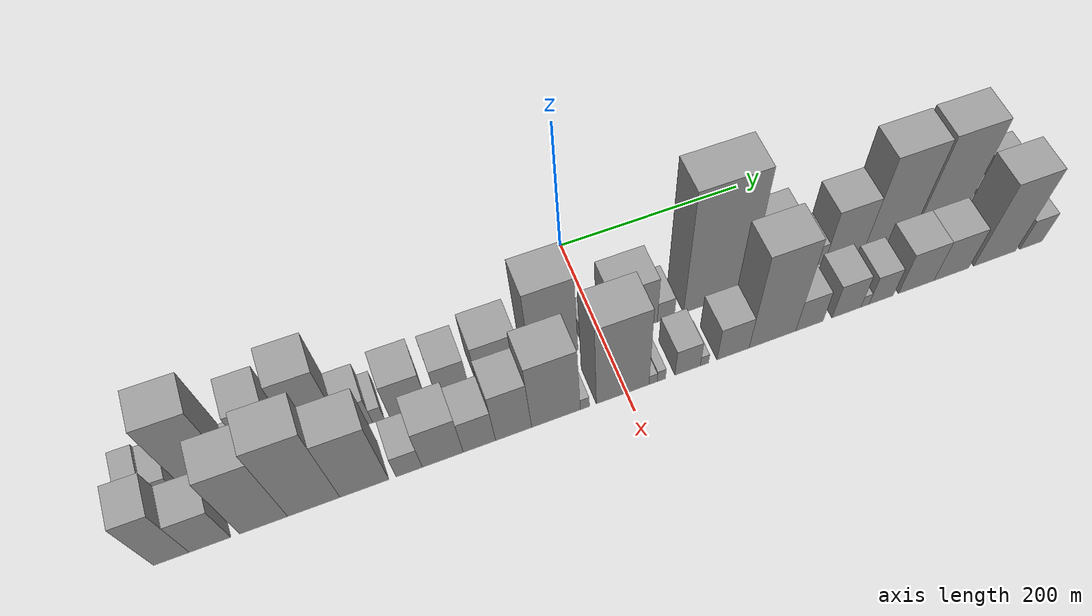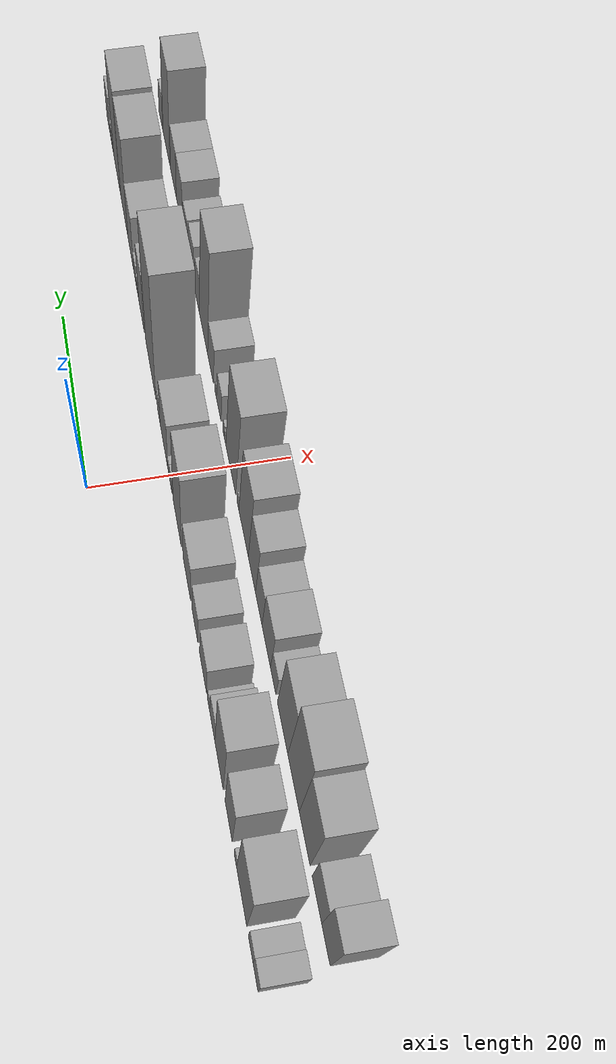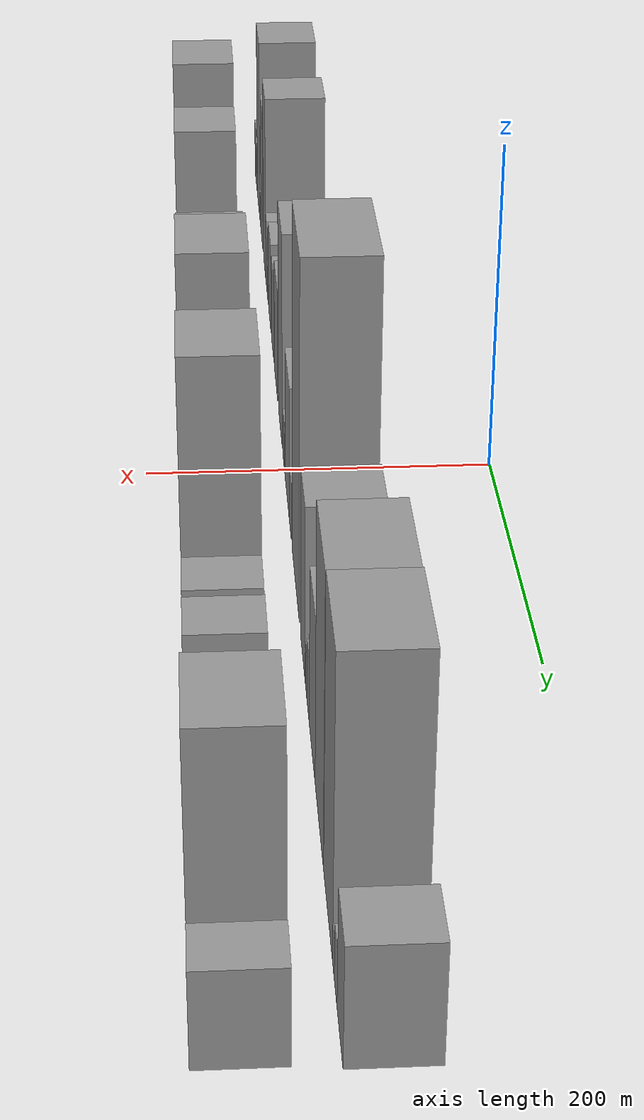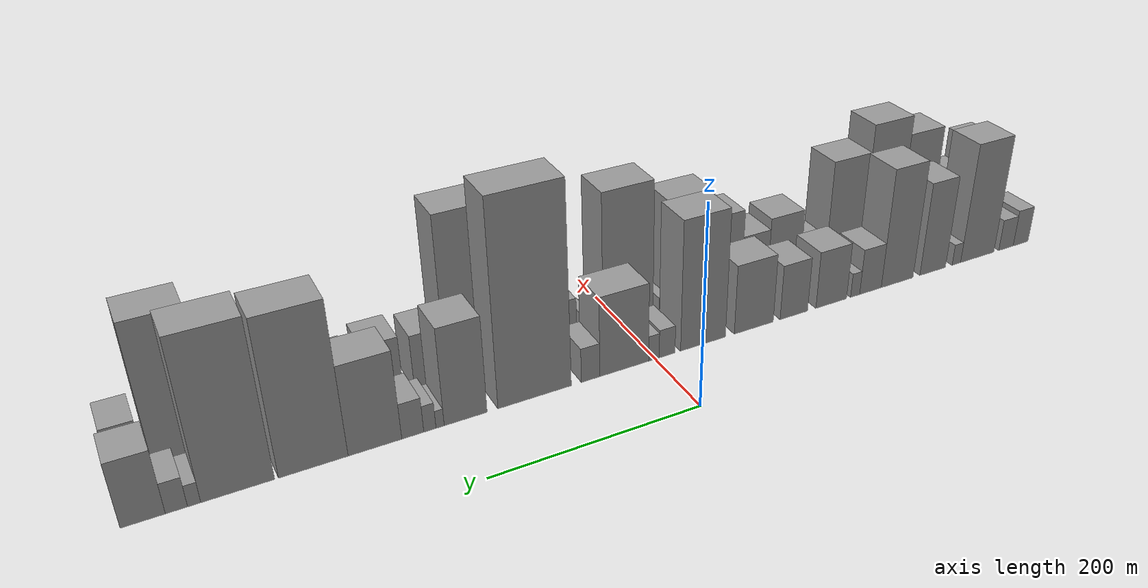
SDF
<sdf version="1.6">
 <world name="default">
  <scene>
   <sky><clouds><speed>12</speed></clouds></sky>
   <ambient>0.4 0.4 0.4 1</ambient>
   <background>0.7 0.7 0.7 1</background>
   <shadows>1</shadows>
  </scene>
  <gravity>0 0 -9.8066</gravity>
  <magnetic_field>6e-06 2.3e-05 -4.2e-05</magnetic_field>
  <physics default="0" name="default_physics" type="ode">
   <ode>
    <solver>
     <type>quick</type>
     <iters>10</iters>
     <sor>1.0</sor>
     <use_dynamic_moi_rescaling>0</use_dynamic_moi_rescaling>
    </solver>
    <constraints>
     <cfm>0</cfm>
     <erp>0.2</erp>
     <contact_max_correcting_vel>100</contact_max_correcting_vel>
     <contact_surface_layer>0.001</contact_surface_layer>
    </constraints>
   </ode>
   <max_step_size>0.004</max_step_size>
   <real_time_factor>1</real_time_factor>
   <real_time_update_rate>250</real_time_update_rate>
  </physics>
  <light name="sun" type="directional">
   <pose>0 0 10 0 0 0</pose>
   <diffuse>0.8 0.8 0.8 1</diffuse>
   <specular>0.2 0.2 0.2 1</specular>
   <attenuation>
    <range>1000</range>
    <constant>0.9</constant>
    <linear>0.01</linear>
    <quadratic>0.001</quadratic>
   </attenuation>
   <direction>-0.5 0.1 -0.9</direction>
  </light>
  <model name="building_1">
   <static>1</static>
   <pose>100.0000 -449.3902 0 0.000000 0.000000 0.000000</pose>
   <link name="link">
    <pose>0 0 21.00 0 0 0</pose>
    <collision name="collision"><geometry><box><size>40.0000 21.2195 42.0000</size></box></geometry></collision>
    <visual name="visual">
     <cast_shadows>0</cast_shadows>
     <geometry><box><size>40.0000 21.2195 42.0000</size></box></geometry>
     <material>
      <script>
       <uri>model://grey_wall/materials/scripts</uri>
       <uri>model://grey_wall/materials/textures</uri>
       <name>vrc/grey_wall</name>
      </script>
     </material>
    </visual>
   </link>
  </model>
  <model name="building_2">
   <static>1</static>
   <pose>100.0000 -428.5932 0 0.000000 0.000000 0.000000</pose>
   <link name="link">
    <pose>0 0 18.00 0 0 0</pose>
    <collision name="collision"><geometry><box><size>40.0000 20.3746 36.0000</size></box></geometry></collision>
    <visual name="visual">
     <cast_shadows>0</cast_shadows>
     <geometry><box><size>40.0000 20.3746 36.0000</size></box></geometry>
     <material>
      <script>
       <uri>model://grey_wall/materials/scripts</uri>
       <uri>model://grey_wall/materials/textures</uri>
       <name>vrc/grey_wall</name>
      </script>
     </material>
    </visual>
   </link>
  </model>
  <model name="building_3">
   <static>1</static>
   <pose>100.0000 -388.4780 0 0.000000 0.000000 0.000000</pose>
   <link name="link">
    <pose>0 0 67.50 0 0 0</pose>
    <collision name="collision"><geometry><box><size>40.0000 45.8558 135.0000</size></box></geometry></collision>
    <visual name="visual">
     <cast_shadows>0</cast_shadows>
     <geometry><box><size>40.0000 45.8558 135.0000</size></box></geometry>
     <material>
      <script>
       <uri>model://grey_wall/materials/scripts</uri>
       <uri>model://grey_wall/materials/textures</uri>
       <name>vrc/grey_wall</name>
      </script>
     </material>
    </visual>
   </link>
  </model>
  <model name="building_4">
   <static>1</static>
   <pose>100.0000 -359.8296 0 0.000000 0.000000 0.000000</pose>
   <link name="link">
    <pose>0 0 12.00 0 0 0</pose>
    <collision name="collision"><geometry><box><size>40.0000 11.4409 24.0000</size></box></geometry></collision>
    <visual name="visual">
     <cast_shadows>0</cast_shadows>
     <geometry><box><size>40.0000 11.4409 24.0000</size></box></geometry>
     <material>
      <script>
       <uri>model://grey_wall/materials/scripts</uri>
       <uri>model://grey_wall/materials/textures</uri>
       <name>vrc/grey_wall</name>
      </script>
     </material>
    </visual>
   </link>
  </model>
  <model name="building_5">
   <static>1</static>
   <pose>100.0000 -328.1157 0 0.000000 0.000000 0.000000</pose>
   <link name="link">
    <pose>0 0 52.50 0 0 0</pose>
    <collision name="collision"><geometry><box><size>40.0000 33.9868 105.0000</size></box></geometry></collision>
    <visual name="visual">
     <cast_shadows>0</cast_shadows>
     <geometry><box><size>40.0000 33.9868 105.0000</size></box></geometry>
     <material>
      <script>
       <uri>model://grey_wall/materials/scripts</uri>
       <uri>model://grey_wall/materials/textures</uri>
       <name>vrc/grey_wall</name>
      </script>
     </material>
    </visual>
   </link>
  </model>
  <model name="building_6">
   <static>1</static>
   <pose>100.0000 -281.7072 0 0.000000 0.000000 0.000000</pose>
   <link name="link">
    <pose>0 0 66.00 0 0 0</pose>
    <collision name="collision"><geometry><box><size>40.0000 40.8302 132.0000</size></box></geometry></collision>
    <visual name="visual">
     <cast_shadows>0</cast_shadows>
     <geometry><box><size>40.0000 40.8302 132.0000</size></box></geometry>
     <material>
      <script>
       <uri>model://grey_wall/materials/scripts</uri>
       <uri>model://grey_wall/materials/textures</uri>
       <name>vrc/grey_wall</name>
      </script>
     </material>
    </visual>
   </link>
  </model>
  <model name="building_7">
   <static>1</static>
   <pose>100.0000 -247.7071 0 0.000000 0.000000 0.000000</pose>
   <link name="link">
    <pose>0 0 25.50 0 0 0</pose>
    <collision name="collision"><geometry><box><size>40.0000 27.1700 51.0000</size></box></geometry></collision>
    <visual name="visual">
     <cast_shadows>0</cast_shadows>
     <geometry><box><size>40.0000 27.1700 51.0000</size></box></geometry>
     <material>
      <script>
       <uri>model://grey_wall/materials/scripts</uri>
       <uri>model://grey_wall/materials/textures</uri>
       <name>vrc/grey_wall</name>
      </script>
     </material>
    </visual>
   </link>
  </model>
  <model name="building_8">
   <static>1</static>
   <pose>100.0000 -228.4823 0 0.000000 0.000000 0.000000</pose>
   <link name="link">
    <pose>0 0 13.50 0 0 0</pose>
    <collision name="collision"><geometry><box><size>40.0000 11.2797 27.0000</size></box></geometry></collision>
    <visual name="visual">
     <cast_shadows>0</cast_shadows>
     <geometry><box><size>40.0000 11.2797 27.0000</size></box></geometry>
     <material>
      <script>
       <uri>model://grey_wall/materials/scripts</uri>
       <uri>model://grey_wall/materials/textures</uri>
       <name>vrc/grey_wall</name>
      </script>
     </material>
    </visual>
   </link>
  </model>
  <model name="building_9">
   <static>1</static>
   <pose>100.0000 -199.2075 0 0.000000 0.000000 0.000000</pose>
   <link name="link">
    <pose>0 0 31.50 0 0 0</pose>
    <collision name="collision"><geometry><box><size>40.0000 37.2698 63.0000</size></box></geometry></collision>
    <visual name="visual">
     <cast_shadows>0</cast_shadows>
     <geometry><box><size>40.0000 37.2698 63.0000</size></box></geometry>
     <material>
      <script>
       <uri>model://grey_wall/materials/scripts</uri>
       <uri>model://grey_wall/materials/textures</uri>
       <name>vrc/grey_wall</name>
      </script>
     </material>
    </visual>
   </link>
  </model>
  <model name="building_10">
   <static>1</static>
   <pose>100.0000 -154.3874 0 0.000000 0.000000 0.000000</pose>
   <link name="link">
    <pose>0 0 30.00 0 0 0</pose>
    <collision name="collision"><geometry><box><size>40.0000 32.3704 60.0000</size></box></geometry></collision>
    <visual name="visual">
     <cast_shadows>0</cast_shadows>
     <geometry><box><size>40.0000 32.3704 60.0000</size></box></geometry>
     <material>
      <script>
       <uri>model://grey_wall/materials/scripts</uri>
       <uri>model://grey_wall/materials/textures</uri>
       <name>vrc/grey_wall</name>
      </script>
     </material>
    </visual>
   </link>
  </model>
  <model name="building_11">
   <static>1</static>
   <pose>100.0000 -108.0179 0 0.000000 0.000000 0.000000</pose>
   <link name="link">
    <pose>0 0 37.50 0 0 0</pose>
    <collision name="collision"><geometry><box><size>40.0000 44.3687 75.0000</size></box></geometry></collision>
    <visual name="visual">
     <cast_shadows>0</cast_shadows>
     <geometry><box><size>40.0000 44.3687 75.0000</size></box></geometry>
     <material>
      <script>
       <uri>model://grey_wall/materials/scripts</uri>
       <uri>model://grey_wall/materials/textures</uri>
       <name>vrc/grey_wall</name>
      </script>
     </material>
    </visual>
   </link>
  </model>
  <model name="building_12">
   <static>1</static>
   <pose>100.0000 -51.2898 0 0.000000 0.000000 0.000000</pose>
   <link name="link">
    <pose>0 0 69.00 0 0 0</pose>
    <collision name="collision"><geometry><box><size>40.0000 49.0875 138.0000</size></box></geometry></collision>
    <visual name="visual">
     <cast_shadows>0</cast_shadows>
     <geometry><box><size>40.0000 49.0875 138.0000</size></box></geometry>
     <material>
      <script>
       <uri>model://grey_wall/materials/scripts</uri>
       <uri>model://grey_wall/materials/textures</uri>
       <name>vrc/grey_wall</name>
      </script>
     </material>
    </visual>
   </link>
  </model>
  <model name="building_13">
   <static>1</static>
   <pose>100.0000 -12.3509 0 0.000000 0.000000 0.000000</pose>
   <link name="link">
    <pose>0 0 15.00 0 0 0</pose>
    <collision name="collision"><geometry><box><size>40.0000 16.7902 30.0000</size></box></geometry></collision>
    <visual name="visual">
     <cast_shadows>0</cast_shadows>
     <geometry><box><size>40.0000 16.7902 30.0000</size></box></geometry>
     <material>
      <script>
       <uri>model://grey_wall/materials/scripts</uri>
       <uri>model://grey_wall/materials/textures</uri>
       <name>vrc/grey_wall</name>
      </script>
     </material>
    </visual>
   </link>
  </model>
  <model name="building_14">
   <static>1</static>
   <pose>100.0000 1.6245 0 0.000000 0.000000 0.000000</pose>
   <link name="link">
    <pose>0 0 13.50 0 0 0</pose>
    <collision name="collision"><geometry><box><size>40.0000 11.1606 27.0000</size></box></geometry></collision>
    <visual name="visual">
     <cast_shadows>0</cast_shadows>
     <geometry><box><size>40.0000 11.1606 27.0000</size></box></geometry>
     <material>
      <script>
       <uri>model://grey_wall/materials/scripts</uri>
       <uri>model://grey_wall/materials/textures</uri>
       <name>vrc/grey_wall</name>
      </script>
     </material>
    </visual>
   </link>
  </model>
  <model name="building_15">
   <static>1</static>
   <pose>100.0000 32.2557 0 0.000000 0.000000 0.000000</pose>
   <link name="link">
    <pose>0 0 42.00 0 0 0</pose>
    <collision name="collision"><geometry><box><size>40.0000 50.1018 84.0000</size></box></geometry></collision>
    <visual name="visual">
     <cast_shadows>0</cast_shadows>
     <geometry><box><size>40.0000 50.1018 84.0000</size></box></geometry>
     <material>
      <script>
       <uri>model://grey_wall/materials/scripts</uri>
       <uri>model://grey_wall/materials/textures</uri>
       <name>vrc/grey_wall</name>
      </script>
     </material>
    </visual>
   </link>
  </model>
  <model name="building_16">
   <static>1</static>
   <pose>100.0000 66.6126 0 0.000000 0.000000 0.000000</pose>
   <link name="link">
    <pose>0 0 18.00 0 0 0</pose>
    <collision name="collision"><geometry><box><size>40.0000 18.6121 36.0000</size></box></geometry></collision>
    <visual name="visual">
     <cast_shadows>0</cast_shadows>
     <geometry><box><size>40.0000 18.6121 36.0000</size></box></geometry>
     <material>
      <script>
       <uri>model://grey_wall/materials/scripts</uri>
       <uri>model://grey_wall/materials/textures</uri>
       <name>vrc/grey_wall</name>
      </script>
     </material>
    </visual>
   </link>
  </model>
  <model name="building_17">
   <static>1</static>
   <pose>100.0000 121.2676 0 0.000000 0.000000 0.000000</pose>
   <link name="link">
    <pose>0 0 103.50 0 0 0</pose>
    <collision name="collision"><geometry><box><size>40.0000 70.6977 207.0000</size></box></geometry></collision>
    <visual name="visual">
     <cast_shadows>0</cast_shadows>
     <geometry><box><size>40.0000 70.6977 207.0000</size></box></geometry>
     <material>
      <script>
       <uri>model://grey_wall/materials/scripts</uri>
       <uri>model://grey_wall/materials/textures</uri>
       <name>vrc/grey_wall</name>
      </script>
     </material>
    </visual>
   </link>
  </model>
  <model name="building_18">
   <static>1</static>
   <pose>100.0000 186.2525 0 0.000000 0.000000 0.000000</pose>
   <link name="link">
    <pose>0 0 49.50 0 0 0</pose>
    <collision name="collision"><geometry><box><size>40.0000 39.2721 99.0000</size></box></geometry></collision>
    <visual name="visual">
     <cast_shadows>0</cast_shadows>
     <geometry><box><size>40.0000 39.2721 99.0000</size></box></geometry>
     <material>
      <script>
       <uri>model://grey_wall/materials/scripts</uri>
       <uri>model://grey_wall/materials/textures</uri>
       <name>vrc/grey_wall</name>
      </script>
     </material>
    </visual>
   </link>
  </model>
  <model name="building_19">
   <static>1</static>
   <pose>100.0000 209.5763 0 0.000000 0.000000 0.000000</pose>
   <link name="link">
    <pose>0 0 9.00 0 0 0</pose>
    <collision name="collision"><geometry><box><size>40.0000 7.3756 18.0000</size></box></geometry></collision>
    <visual name="visual">
     <cast_shadows>0</cast_shadows>
     <geometry><box><size>40.0000 7.3756 18.0000</size></box></geometry>
     <material>
      <script>
       <uri>model://grey_wall/materials/scripts</uri>
       <uri>model://grey_wall/materials/textures</uri>
       <name>vrc/grey_wall</name>
      </script>
     </material>
    </visual>
   </link>
  </model>
  <model name="building_20">
   <static>1</static>
   <pose>100.0000 218.6979 0 0.000000 0.000000 0.000000</pose>
   <link name="link">
    <pose>0 0 13.50 0 0 0</pose>
    <collision name="collision"><geometry><box><size>40.0000 10.8678 27.0000</size></box></geometry></collision>
    <visual name="visual">
     <cast_shadows>0</cast_shadows>
     <geometry><box><size>40.0000 10.8678 27.0000</size></box></geometry>
     <material>
      <script>
       <uri>model://grey_wall/materials/scripts</uri>
       <uri>model://grey_wall/materials/textures</uri>
       <name>vrc/grey_wall</name>
      </script>
     </material>
    </visual>
   </link>
  </model>
  <model name="building_21">
   <static>1</static>
   <pose>100.0000 233.8165 0 0.000000 0.000000 0.000000</pose>
   <link name="link">
    <pose>0 0 18.00 0 0 0</pose>
    <collision name="collision"><geometry><box><size>40.0000 19.3694 36.0000</size></box></geometry></collision>
    <visual name="visual">
     <cast_shadows>0</cast_shadows>
     <geometry><box><size>40.0000 19.3694 36.0000</size></box></geometry>
     <material>
      <script>
       <uri>model://grey_wall/materials/scripts</uri>
       <uri>model://grey_wall/materials/textures</uri>
       <name>vrc/grey_wall</name>
      </script>
     </material>
    </visual>
   </link>
  </model>
  <model name="building_22">
   <static>1</static>
   <pose>100.0000 266.4985 0 0.000000 0.000000 0.000000</pose>
   <link name="link">
    <pose>0 0 45.00 0 0 0</pose>
    <collision name="collision"><geometry><box><size>40.0000 45.9946 90.0000</size></box></geometry></collision>
    <visual name="visual">
     <cast_shadows>0</cast_shadows>
     <geometry><box><size>40.0000 45.9946 90.0000</size></box></geometry>
     <material>
      <script>
       <uri>model://grey_wall/materials/scripts</uri>
       <uri>model://grey_wall/materials/textures</uri>
       <name>vrc/grey_wall</name>
      </script>
     </material>
    </visual>
   </link>
  </model>
  <model name="building_23">
   <static>1</static>
   <pose>100.0000 318.1298 0 0.000000 0.000000 0.000000</pose>
   <link name="link">
    <pose>0 0 76.50 0 0 0</pose>
    <collision name="collision"><geometry><box><size>40.0000 57.2680 153.0000</size></box></geometry></collision>
    <visual name="visual">
     <cast_shadows>0</cast_shadows>
     <geometry><box><size>40.0000 57.2680 153.0000</size></box></geometry>
     <material>
      <script>
       <uri>model://grey_wall/materials/scripts</uri>
       <uri>model://grey_wall/materials/textures</uri>
       <name>vrc/grey_wall</name>
      </script>
     </material>
    </visual>
   </link>
  </model>
  <model name="building_24">
   <static>1</static>
   <pose>100.0000 378.6018 0 0.000000 0.000000 0.000000</pose>
   <link name="link">
    <pose>0 0 78.00 0 0 0</pose>
    <collision name="collision"><geometry><box><size>40.0000 57.6761 156.0000</size></box></geometry></collision>
    <visual name="visual">
     <cast_shadows>0</cast_shadows>
     <geometry><box><size>40.0000 57.6761 156.0000</size></box></geometry>
     <material>
      <script>
       <uri>model://grey_wall/materials/scripts</uri>
       <uri>model://grey_wall/materials/textures</uri>
       <name>vrc/grey_wall</name>
      </script>
     </material>
    </visual>
   </link>
  </model>
  <model name="building_25">
   <static>1</static>
   <pose>100.0000 412.4265 0 0.000000 0.000000 0.000000</pose>
   <link name="link">
    <pose>0 0 10.50 0 0 0</pose>
    <collision name="collision"><geometry><box><size>40.0000 9.9733 21.0000</size></box></geometry></collision>
    <visual name="visual">
     <cast_shadows>0</cast_shadows>
     <geometry><box><size>40.0000 9.9733 21.0000</size></box></geometry>
     <material>
      <script>
       <uri>model://grey_wall/materials/scripts</uri>
       <uri>model://grey_wall/materials/textures</uri>
       <name>vrc/grey_wall</name>
      </script>
     </material>
    </visual>
   </link>
  </model>
  <model name="building_26">
   <static>1</static>
   <pose>100.0000 425.7243 0 0.000000 0.000000 0.000000</pose>
   <link name="link">
    <pose>0 0 15.00 0 0 0</pose>
    <collision name="collision"><geometry><box><size>40.0000 16.6223 30.0000</size></box></geometry></collision>
    <visual name="visual">
     <cast_shadows>0</cast_shadows>
     <geometry><box><size>40.0000 16.6223 30.0000</size></box></geometry>
     <material>
      <script>
       <uri>model://grey_wall/materials/scripts</uri>
       <uri>model://grey_wall/materials/textures</uri>
       <name>vrc/grey_wall</name>
      </script>
     </material>
    </visual>
   </link>
  </model>
  <model name="building_27">
   <static>1</static>
   <pose>100.0000 450.6406 0 0.000000 0.000000 0.000000</pose>
   <link name="link">
    <pose>0 0 31.50 0 0 0</pose>
    <collision name="collision"><geometry><box><size>40.0000 33.2103 63.0000</size></box></geometry></collision>
    <visual name="visual">
     <cast_shadows>0</cast_shadows>
     <geometry><box><size>40.0000 33.2103 63.0000</size></box></geometry>
     <material>
      <script>
       <uri>model://grey_wall/materials/scripts</uri>
       <uri>model://grey_wall/materials/textures</uri>
       <name>vrc/grey_wall</name>
      </script>
     </material>
    </visual>
   </link>
  </model>
  <model name="building_28">
   <static>1</static>
   <pose>160.0000 -435.1765 0 0.000000 0.000000 0.000000</pose>
   <link name="link">
    <pose>0 0 51.00 0 0 0</pose>
    <collision name="collision"><geometry><box><size>40.0000 31.6469 102.0000</size></box></geometry></collision>
    <visual name="visual">
     <cast_shadows>0</cast_shadows>
     <geometry><box><size>40.0000 31.6469 102.0000</size></box></geometry>
     <material>
      <script>
       <uri>model://grey_wall/materials/scripts</uri>
       <uri>model://grey_wall/materials/textures</uri>
       <name>vrc/grey_wall</name>
      </script>
     </material>
    </visual>
   </link>
  </model>
  <model name="building_29">
   <static>1</static>
   <pose>160.0000 -400.7766 0 0.000000 0.000000 0.000000</pose>
   <link name="link">
    <pose>0 0 34.50 0 0 0</pose>
    <collision name="collision"><geometry><box><size>40.0000 37.1530 69.0000</size></box></geometry></collision>
    <visual name="visual">
     <cast_shadows>0</cast_shadows>
     <geometry><box><size>40.0000 37.1530 69.0000</size></box></geometry>
     <material>
      <script>
       <uri>model://grey_wall/materials/scripts</uri>
       <uri>model://grey_wall/materials/textures</uri>
       <name>vrc/grey_wall</name>
      </script>
     </material>
    </visual>
   </link>
  </model>
  <model name="building_30">
   <static>1</static>
   <pose>160.0000 -352.2839 0 0.000000 0.000000 0.000000</pose>
   <link name="link">
    <pose>0 0 64.50 0 0 0</pose>
    <collision name="collision"><geometry><box><size>40.0000 43.8323 129.0000</size></box></geometry></collision>
    <visual name="visual">
     <cast_shadows>0</cast_shadows>
     <geometry><box><size>40.0000 43.8323 129.0000</size></box></geometry>
     <material>
      <script>
       <uri>model://grey_wall/materials/scripts</uri>
       <uri>model://grey_wall/materials/textures</uri>
       <name>vrc/grey_wall</name>
      </script>
     </material>
    </visual>
   </link>
  </model>
  <model name="building_31">
   <static>1</static>
   <pose>160.0000 -306.0806 0 0.000000 0.000000 0.000000</pose>
   <link name="link">
    <pose>0 0 75.00 0 0 0</pose>
    <collision name="collision"><geometry><box><size>40.0000 48.5743 150.0000</size></box></geometry></collision>
    <visual name="visual">
     <cast_shadows>0</cast_shadows>
     <geometry><box><size>40.0000 48.5743 150.0000</size></box></geometry>
     <material>
      <script>
       <uri>model://grey_wall/materials/scripts</uri>
       <uri>model://grey_wall/materials/textures</uri>
       <name>vrc/grey_wall</name>
      </script>
     </material>
    </visual>
   </link>
  </model>
  <model name="building_32">
   <static>1</static>
   <pose>160.0000 -258.7386 0 0.000000 0.000000 0.000000</pose>
   <link name="link">
    <pose>0 0 60.00 0 0 0</pose>
    <collision name="collision"><geometry><box><size>40.0000 46.1098 120.0000</size></box></geometry></collision>
    <visual name="visual">
     <cast_shadows>0</cast_shadows>
     <geometry><box><size>40.0000 46.1098 120.0000</size></box></geometry>
     <material>
      <script>
       <uri>model://grey_wall/materials/scripts</uri>
       <uri>model://grey_wall/materials/textures</uri>
       <name>vrc/grey_wall</name>
      </script>
     </material>
    </visual>
   </link>
  </model>
  <model name="building_33">
   <static>1</static>
   <pose>160.0000 -216.2100 0 0.000000 0.000000 0.000000</pose>
   <link name="link">
    <pose>0 0 21.00 0 0 0</pose>
    <collision name="collision"><geometry><box><size>40.0000 24.9474 42.0000</size></box></geometry></collision>
    <visual name="visual">
     <cast_shadows>0</cast_shadows>
     <geometry><box><size>40.0000 24.9474 42.0000</size></box></geometry>
     <material>
      <script>
       <uri>model://grey_wall/materials/scripts</uri>
       <uri>model://grey_wall/materials/textures</uri>
       <name>vrc/grey_wall</name>
      </script>
     </material>
    </visual>
   </link>
  </model>
  <model name="building_34">
   <static>1</static>
   <pose>160.0000 -183.8774 0 0.000000 0.000000 0.000000</pose>
   <link name="link">
    <pose>0 0 37.50 0 0 0</pose>
    <collision name="collision"><geometry><box><size>40.0000 39.7178 75.0000</size></box></geometry></collision>
    <visual name="visual">
     <cast_shadows>0</cast_shadows>
     <geometry><box><size>40.0000 39.7178 75.0000</size></box></geometry>
     <material>
      <script>
       <uri>model://grey_wall/materials/scripts</uri>
       <uri>model://grey_wall/materials/textures</uri>
       <name>vrc/grey_wall</name>
      </script>
     </material>
    </visual>
   </link>
  </model>
  <model name="building_35">
   <static>1</static>
   <pose>160.0000 -148.1005 0 0.000000 0.000000 0.000000</pose>
   <link name="link">
    <pose>0 0 31.50 0 0 0</pose>
    <collision name="collision"><geometry><box><size>40.0000 31.8360 63.0000</size></box></geometry></collision>
    <visual name="visual">
     <cast_shadows>0</cast_shadows>
     <geometry><box><size>40.0000 31.8360 63.0000</size></box></geometry>
     <material>
      <script>
       <uri>model://grey_wall/materials/scripts</uri>
       <uri>model://grey_wall/materials/textures</uri>
       <name>vrc/grey_wall</name>
      </script>
     </material>
    </visual>
   </link>
  </model>
  <model name="building_36">
   <static>1</static>
   <pose>160.0000 -114.2837 0 0.000000 0.000000 0.000000</pose>
   <link name="link">
    <pose>0 0 46.50 0 0 0</pose>
    <collision name="collision"><geometry><box><size>40.0000 35.7976 93.0000</size></box></geometry></collision>
    <visual name="visual">
     <cast_shadows>0</cast_shadows>
     <geometry><box><size>40.0000 35.7976 93.0000</size></box></geometry>
     <material>
      <script>
       <uri>model://grey_wall/materials/scripts</uri>
       <uri>model://grey_wall/materials/textures</uri>
       <name>vrc/grey_wall</name>
      </script>
     </material>
    </visual>
   </link>
  </model>
  <model name="building_37">
   <static>1</static>
   <pose>160.0000 -71.8641 0 0.000000 0.000000 0.000000</pose>
   <link name="link">
    <pose>0 0 61.50 0 0 0</pose>
    <collision name="collision"><geometry><box><size>40.0000 49.0415 123.0000</size></box></geometry></collision>
    <visual name="visual">
     <cast_shadows>0</cast_shadows>
     <geometry><box><size>40.0000 49.0415 123.0000</size></box></geometry>
     <material>
      <script>
       <uri>model://grey_wall/materials/scripts</uri>
       <uri>model://grey_wall/materials/textures</uri>
       <name>vrc/grey_wall</name>
      </script>
     </material>
    </visual>
   </link>
  </model>
  <model name="building_38">
   <static>1</static>
   <pose>160.0000 -42.6818 0 0.000000 0.000000 0.000000</pose>
   <link name="link">
    <pose>0 0 10.50 0 0 0</pose>
    <collision name="collision"><geometry><box><size>40.0000 9.3232 21.0000</size></box></geometry></collision>
    <visual name="visual">
     <cast_shadows>0</cast_shadows>
     <geometry><box><size>40.0000 9.3232 21.0000</size></box></geometry>
     <material>
      <script>
       <uri>model://grey_wall/materials/scripts</uri>
       <uri>model://grey_wall/materials/textures</uri>
       <name>vrc/grey_wall</name>
      </script>
     </material>
    </visual>
   </link>
  </model>
  <model name="building_39">
   <static>1</static>
   <pose>160.0000 -3.9084 0 0.000000 0.000000 0.000000</pose>
   <link name="link">
    <pose>0 0 75.00 0 0 0</pose>
    <collision name="collision"><geometry><box><size>40.0000 54.2237 150.0000</size></box></geometry></collision>
    <visual name="visual">
     <cast_shadows>0</cast_shadows>
     <geometry><box><size>40.0000 54.2237 150.0000</size></box></geometry>
     <material>
      <script>
       <uri>model://grey_wall/materials/scripts</uri>
       <uri>model://grey_wall/materials/textures</uri>
       <name>vrc/grey_wall</name>
      </script>
     </material>
    </visual>
   </link>
  </model>
  <model name="building_40">
   <static>1</static>
   <pose>160.0000 27.5160 0 0.000000 0.000000 0.000000</pose>
   <link name="link">
    <pose>0 0 9.00 0 0 0</pose>
    <collision name="collision"><geometry><box><size>40.0000 8.6252 18.0000</size></box></geometry></collision>
    <visual name="visual">
     <cast_shadows>0</cast_shadows>
     <geometry><box><size>40.0000 8.6252 18.0000</size></box></geometry>
     <material>
      <script>
       <uri>model://grey_wall/materials/scripts</uri>
       <uri>model://grey_wall/materials/textures</uri>
       <name>vrc/grey_wall</name>
      </script>
     </material>
    </visual>
   </link>
  </model>
  <model name="building_41">
   <static>1</static>
   <pose>160.0000 36.2414 0 0.000000 0.000000 0.000000</pose>
   <link name="link">
    <pose>0 0 10.50 0 0 0</pose>
    <collision name="collision"><geometry><box><size>40.0000 8.8255 21.0000</size></box></geometry></collision>
    <visual name="visual">
     <cast_shadows>0</cast_shadows>
     <geometry><box><size>40.0000 8.8255 21.0000</size></box></geometry>
     <material>
      <script>
       <uri>model://grey_wall/materials/scripts</uri>
       <uri>model://grey_wall/materials/textures</uri>
       <name>vrc/grey_wall</name>
      </script>
     </material>
    </visual>
   </link>
  </model>
  <model name="building_42">
   <static>1</static>
   <pose>160.0000 63.9563 0 0.000000 0.000000 0.000000</pose>
   <link name="link">
    <pose>0 0 24.00 0 0 0</pose>
    <collision name="collision"><geometry><box><size>40.0000 26.6043 48.0000</size></box></geometry></collision>
    <visual name="visual">
     <cast_shadows>0</cast_shadows>
     <geometry><box><size>40.0000 26.6043 48.0000</size></box></geometry>
     <material>
      <script>
       <uri>model://grey_wall/materials/scripts</uri>
       <uri>model://grey_wall/materials/textures</uri>
       <name>vrc/grey_wall</name>
      </script>
     </material>
    </visual>
   </link>
  </model>
  <model name="building_43">
   <static>1</static>
   <pose>160.0000 81.7181 0 0.000000 0.000000 0.000000</pose>
   <link name="link">
    <pose>0 0 9.00 0 0 0</pose>
    <collision name="collision"><geometry><box><size>40.0000 8.9193 18.0000</size></box></geometry></collision>
    <visual name="visual">
     <cast_shadows>0</cast_shadows>
     <geometry><box><size>40.0000 8.9193 18.0000</size></box></geometry>
     <material>
      <script>
       <uri>model://grey_wall/materials/scripts</uri>
       <uri>model://grey_wall/materials/textures</uri>
       <name>vrc/grey_wall</name>
      </script>
     </material>
    </visual>
   </link>
  </model>
  <model name="building_44">
   <static>1</static>
   <pose>160.0000 112.4249 0 0.000000 0.000000 0.000000</pose>
   <link name="link">
    <pose>0 0 30.00 0 0 0</pose>
    <collision name="collision"><geometry><box><size>40.0000 34.4943 60.0000</size></box></geometry></collision>
    <visual name="visual">
     <cast_shadows>0</cast_shadows>
     <geometry><box><size>40.0000 34.4943 60.0000</size></box></geometry>
     <material>
      <script>
       <uri>model://grey_wall/materials/scripts</uri>
       <uri>model://grey_wall/materials/textures</uri>
       <name>vrc/grey_wall</name>
      </script>
     </material>
    </visual>
   </link>
  </model>
  <model name="building_45">
   <static>1</static>
   <pose>160.0000 155.1992 0 0.000000 0.000000 0.000000</pose>
   <link name="link">
    <pose>0 0 84.00 0 0 0</pose>
    <collision name="collision"><geometry><box><size>40.0000 51.0542 168.0000</size></box></geometry></collision>
    <visual name="visual">
     <cast_shadows>0</cast_shadows>
     <geometry><box><size>40.0000 51.0542 168.0000</size></box></geometry>
     <material>
      <script>
       <uri>model://grey_wall/materials/scripts</uri>
       <uri>model://grey_wall/materials/textures</uri>
       <name>vrc/grey_wall</name>
      </script>
     </material>
    </visual>
   </link>
  </model>
  <model name="building_46">
   <static>1</static>
   <pose>160.0000 195.7404 0 0.000000 0.000000 0.000000</pose>
   <link name="link">
    <pose>0 0 28.50 0 0 0</pose>
    <collision name="collision"><geometry><box><size>40.0000 30.0282 57.0000</size></box></geometry></collision>
    <visual name="visual">
     <cast_shadows>0</cast_shadows>
     <geometry><box><size>40.0000 30.0282 57.0000</size></box></geometry>
     <material>
      <script>
       <uri>model://grey_wall/materials/scripts</uri>
       <uri>model://grey_wall/materials/textures</uri>
       <name>vrc/grey_wall</name>
      </script>
     </material>
    </visual>
   </link>
  </model>
  <model name="building_47">
   <static>1</static>
   <pose>160.0000 236.9155 0 0.000000 0.000000 0.000000</pose>
   <link name="link">
    <pose>0 0 30.00 0 0 0</pose>
    <collision name="collision"><geometry><box><size>40.0000 32.3220 60.0000</size></box></geometry></collision>
    <visual name="visual">
     <cast_shadows>0</cast_shadows>
     <geometry><box><size>40.0000 32.3220 60.0000</size></box></geometry>
     <material>
      <script>
       <uri>model://grey_wall/materials/scripts</uri>
       <uri>model://grey_wall/materials/textures</uri>
       <name>vrc/grey_wall</name>
      </script>
     </material>
    </visual>
   </link>
  </model>
  <model name="building_48">
   <static>1</static>
   <pose>160.0000 257.7223 0 0.000000 0.000000 0.000000</pose>
   <link name="link">
    <pose>0 0 10.50 0 0 0</pose>
    <collision name="collision"><geometry><box><size>40.0000 9.2917 21.0000</size></box></geometry></collision>
    <visual name="visual">
     <cast_shadows>0</cast_shadows>
     <geometry><box><size>40.0000 9.2917 21.0000</size></box></geometry>
     <material>
      <script>
       <uri>model://grey_wall/materials/scripts</uri>
       <uri>model://grey_wall/materials/textures</uri>
       <name>vrc/grey_wall</name>
      </script>
     </material>
    </visual>
   </link>
  </model>
  <model name="building_49">
   <static>1</static>
   <pose>160.0000 276.1103 0 0.000000 0.000000 0.000000</pose>
   <link name="link">
    <pose>0 0 25.50 0 0 0</pose>
    <collision name="collision"><geometry><box><size>40.0000 27.4843 51.0000</size></box></geometry></collision>
    <visual name="visual">
     <cast_shadows>0</cast_shadows>
     <geometry><box><size>40.0000 27.4843 51.0000</size></box></geometry>
     <material>
      <script>
       <uri>model://grey_wall/materials/scripts</uri>
       <uri>model://grey_wall/materials/textures</uri>
       <name>vrc/grey_wall</name>
      </script>
     </material>
    </visual>
   </link>
  </model>
  <model name="building_50">
   <static>1</static>
   <pose>160.0000 316.2523 0 0.000000 0.000000 0.000000</pose>
   <link name="link">
    <pose>0 0 36.00 0 0 0</pose>
    <collision name="collision"><geometry><box><size>40.0000 40.7998 72.0000</size></box></geometry></collision>
    <visual name="visual">
     <cast_shadows>0</cast_shadows>
     <geometry><box><size>40.0000 40.7998 72.0000</size></box></geometry>
     <material>
      <script>
       <uri>model://grey_wall/materials/scripts</uri>
       <uri>model://grey_wall/materials/textures</uri>
       <name>vrc/grey_wall</name>
      </script>
     </material>
    </visual>
   </link>
  </model>
  <model name="building_51">
   <static>1</static>
   <pose>160.0000 356.9860 0 0.000000 0.000000 0.000000</pose>
   <link name="link">
    <pose>0 0 36.00 0 0 0</pose>
    <collision name="collision"><geometry><box><size>40.0000 40.6676 72.0000</size></box></geometry></collision>
    <visual name="visual">
     <cast_shadows>0</cast_shadows>
     <geometry><box><size>40.0000 40.6676 72.0000</size></box></geometry>
     <material>
      <script>
       <uri>model://grey_wall/materials/scripts</uri>
       <uri>model://grey_wall/materials/textures</uri>
       <name>vrc/grey_wall</name>
      </script>
     </material>
    </visual>
   </link>
  </model>
  <model name="building_52">
   <static>1</static>
   <pose>160.0000 408.0902 0 0.000000 0.000000 0.000000</pose>
   <link name="link">
    <pose>0 0 70.50 0 0 0</pose>
    <collision name="collision"><geometry><box><size>40.0000 49.5408 141.0000</size></box></geometry></collision>
    <visual name="visual">
     <cast_shadows>0</cast_shadows>
     <geometry><box><size>40.0000 49.5408 141.0000</size></box></geometry>
     <material>
      <script>
       <uri>model://grey_wall/materials/scripts</uri>
       <uri>model://grey_wall/materials/textures</uri>
       <name>vrc/grey_wall</name>
      </script>
     </material>
    </visual>
   </link>
  </model>
  <model name="building_53">
   <static>1</static>
   <pose>160.0000 451.3032 0 0.000000 0.000000 0.000000</pose>
   <link name="link">
    <pose>0 0 25.50 0 0 0</pose>
    <collision name="collision"><geometry><box><size>40.0000 26.8852 51.0000</size></box></geometry></collision>
    <visual name="visual">
     <cast_shadows>0</cast_shadows>
     <geometry><box><size>40.0000 26.8852 51.0000</size></box></geometry>
     <material>
      <script>
       <uri>model://grey_wall/materials/scripts</uri>
       <uri>model://grey_wall/materials/textures</uri>
       <name>vrc/grey_wall</name>
      </script>
     </material>
    </visual>
   </link>
  </model>
 </world>
</sdf>
